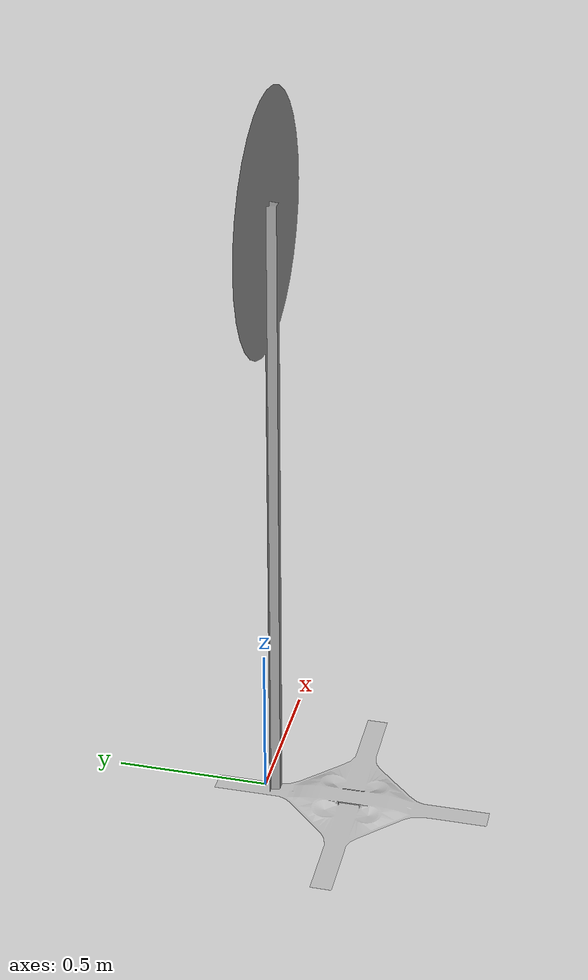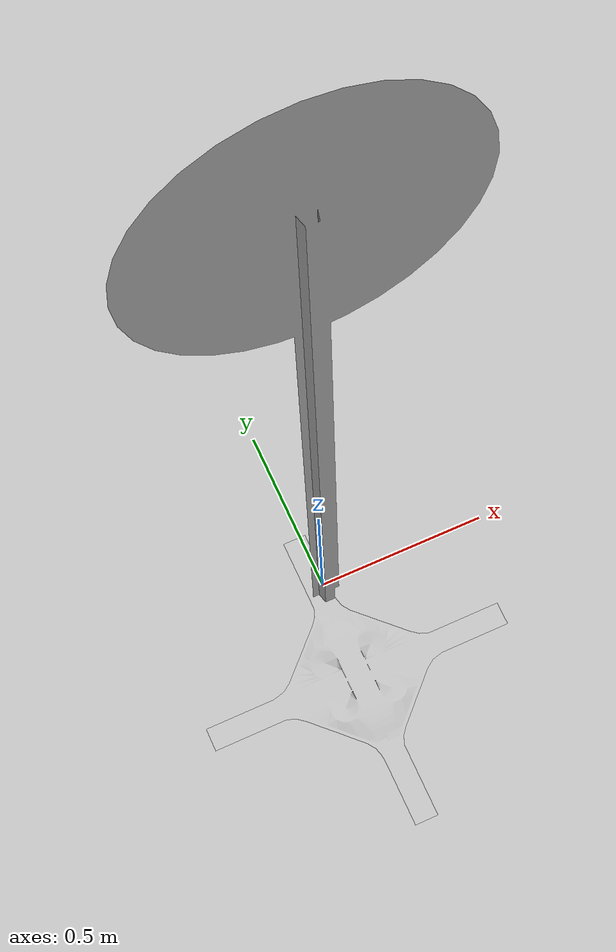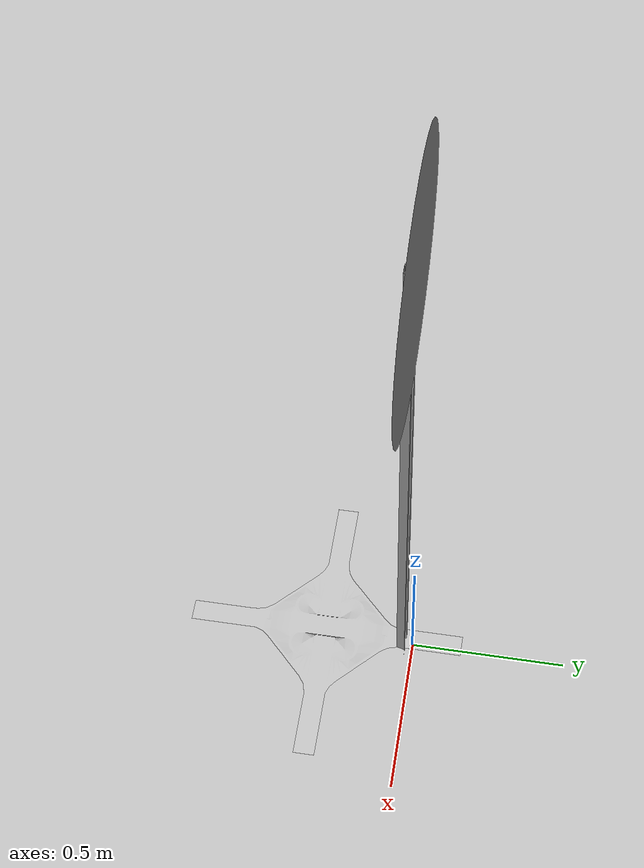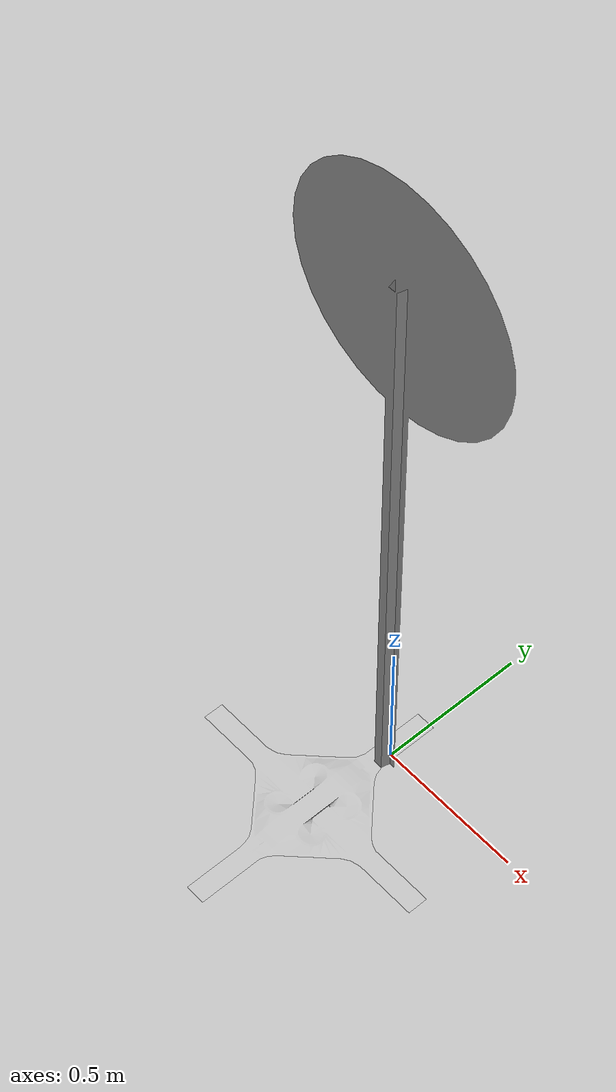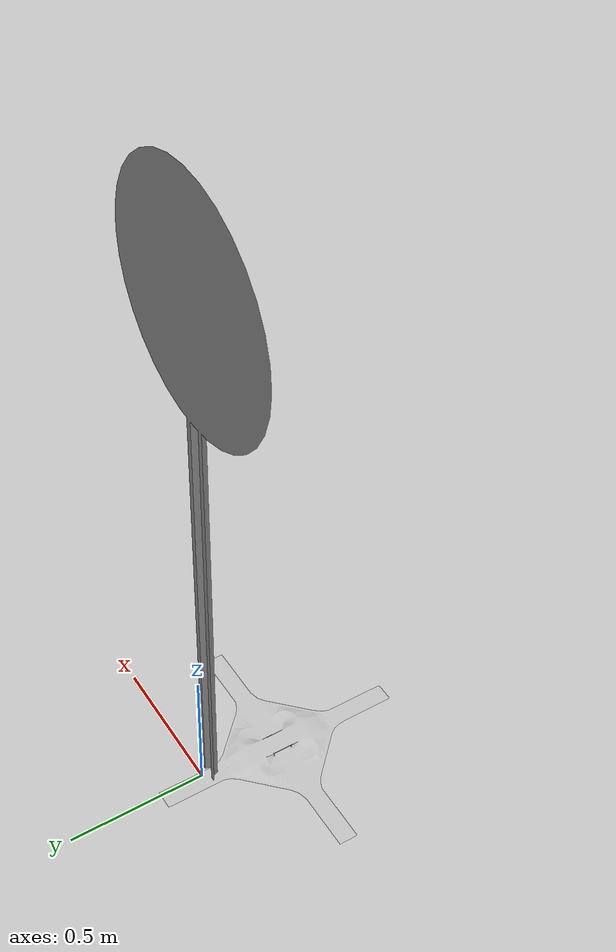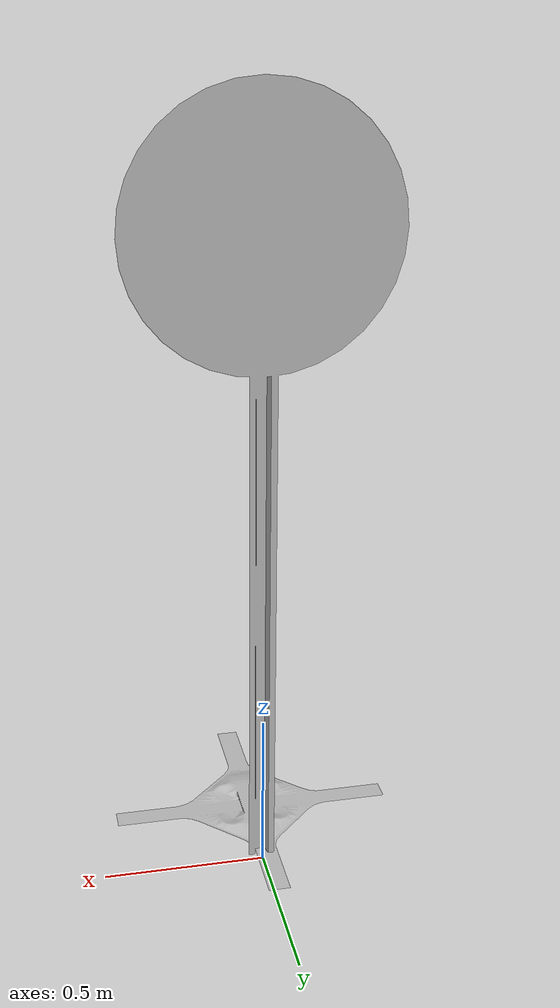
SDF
<sdf version='1.6'>
  <world name='default'>
    <light name='sun' type='directional'>
      <cast_shadows>1</cast_shadows>
      <pose frame=''>0 0 10 0 -0 0</pose>
      <diffuse>0.8 0.8 0.8 1</diffuse>
      <specular>0.2 0.2 0.2 1</specular>
      <attenuation>
        <range>1000</range>
        <constant>0.9</constant>
        <linear>0.01</linear>
        <quadratic>0.001</quadratic>
      </attenuation>
      <direction>-0.5 0.1 -0.9</direction>
    </light>

    <model name='cloverleaf_interchange'>
      <static>1</static>
      <link name='link'>
        <collision name='collision'>
          <geometry>
            <mesh>
              <uri>model://cloverleaf_interchange/meshes/cloverleaf.obj</uri>
              <scale>0.0254 0.0254 0.0254</scale>
            </mesh>
          </geometry>
          <max_contacts>10</max_contacts>
          <surface>
            <contact>
              <ode/>
            </contact>
            <bounce/>
            <friction>
              <torsional>
                <ode/>
              </torsional>
              <ode/>
            </friction>
          </surface>
        </collision>
        <visual name='visual'>
          <geometry>
            <mesh>
              <uri>model://cloverleaf_interchange/meshes/cloverleaf.obj</uri>
              <scale>0.0254 0.0254 0.0254</scale>
            </mesh>
          </geometry>
        </visual>
        <self_collide>0</self_collide>
        <enable_wind>0</enable_wind>
        <kinematic>0</kinematic>
      </link>
      <pose frame=''>0 0 0 0 -0 0</pose>
    </model>

    <model name='Speed limit'>
      <static>1</static>
      <link name='link'>
        <collision name='collision'>
          <geometry>
            <mesh>
              <scale>10 10 10</scale>
              <uri>model://speed_limit_sign/meshes/speed_limit_sign.dae</uri>
            </mesh>
          </geometry>
          <max_contacts>10</max_contacts>
          <surface>
            <contact>
              <ode/>
            </contact>
            <bounce/>
            <friction>
              <torsional>
                <ode/>
              </torsional>
              <ode/>
            </friction>
          </surface>
        </collision>
        <visual name='visual'>
          <geometry>
            <mesh>
              <scale>10 10 10</scale>
              <uri>model://speed_limit_sign/meshes/speed_limit_sign.dae</uri>
            </mesh>
          </geometry>
        </visual>
        <self_collide>0</self_collide>
        <enable_wind>0</enable_wind>
        <kinematic>0</kinematic>
      </link>
      <pose frame=''>0 0 0 0 -0 0</pose>
    </model>
  </world>
</sdf>
